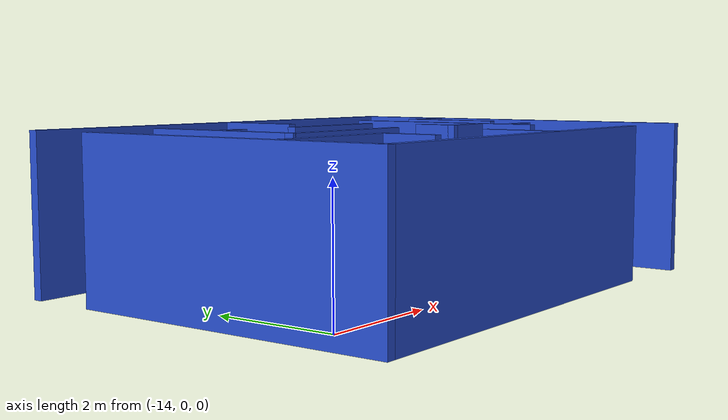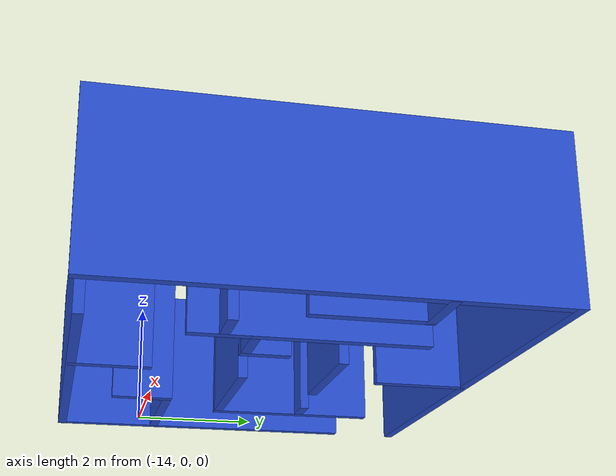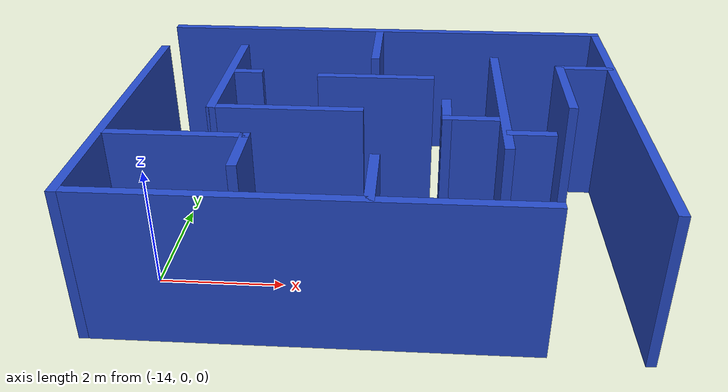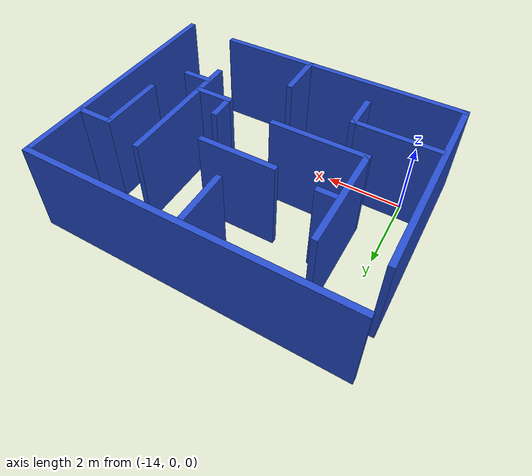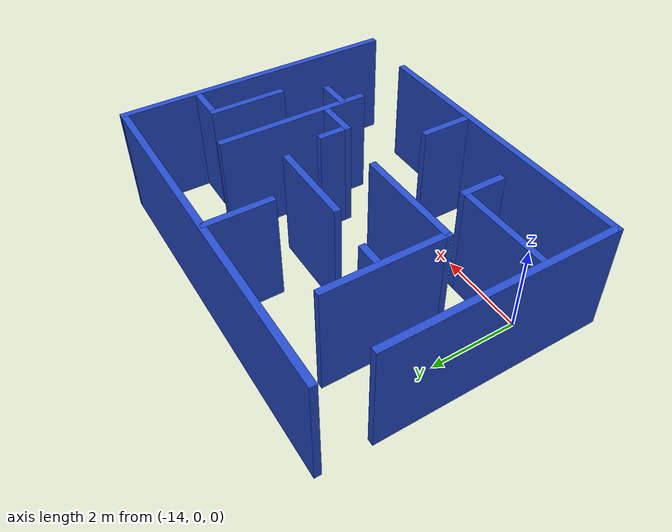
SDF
<?xml version='1.0'?>
<sdf version='1.7'>
  <model name='obstacle_course_3'>
    <pose>-7.3913 1.74348 0 0 -0 0</pose>
    <link name='Wall_12'>
      <collision name='Wall_12_Collision'>
        <geometry>
          <box>
            <size>8.25 0.15 2.5</size>
          </box>
        </geometry>
        <pose>0 0 1.25 0 -0 0</pose>
      </collision>
      <visual name='Wall_12_Visual'>
        <pose>0 0 1.25 0 -0 0</pose>
        <geometry>
          <box>
            <size>8.25 0.15 2.5</size>
          </box>
        </geometry>
        <material>
          <script>
            <uri>file://media/materials/scripts/gazebo.material</uri>
            <name>Gazebo/Blue</name>
          </script>
          <ambient>1 1 1 1</ambient>
        </material>
        <meta>
          <layer>0</layer>
        </meta>
      </visual>
      <pose>-3.26629 3.175 0 0 -0 0</pose>
    </link>
    <link name='Wall_13'>
      <collision name='Wall_13_Collision'>
        <geometry>
          <box>
            <size>6.5 0.15 2.5</size>
          </box>
        </geometry>
        <pose>0 0 1.25 0 -0 0</pose>
      </collision>
      <visual name='Wall_13_Visual'>
        <pose>0 0 1.25 0 -0 0</pose>
        <geometry>
          <box>
            <size>6.5 0.15 2.5</size>
          </box>
        </geometry>
        <material>
          <script>
            <uri>file://media/materials/scripts/gazebo.material</uri>
            <name>Gazebo/Blue</name>
          </script>
          <ambient>1 1 1 1</ambient>
        </material>
        <meta>
          <layer>0</layer>
        </meta>
      </visual>
      <pose>0.783705 -0 0 0 -0 -1.5708</pose>
    </link>
    <link name='Wall_19'>
      <collision name='Wall_19_Collision'>
        <geometry>
          <box>
            <size>2.5 0.15 2.5</size>
          </box>
        </geometry>
        <pose>0 0 1.25 0 -0 0</pose>
      </collision>
      <visual name='Wall_19_Visual'>
        <pose>0 0 1.25 0 -0 0</pose>
        <geometry>
          <box>
            <size>2.5 0.15 2.5</size>
          </box>
        </geometry>
        <material>
          <script>
            <uri>file://media/materials/scripts/gazebo.material</uri>
            <name>Gazebo/Blue</name>
          </script>
          <ambient>1 1 1 1</ambient>
        </material>
        <meta>
          <layer>0</layer>
        </meta>
      </visual>
      <pose>-4.67213 -0.429146 0 0 -0 0</pose>
    </link>
    <link name='Wall_25'>
      <collision name='Wall_25_Collision'>
        <geometry>
          <box>
            <size>3.5 0.15 2.5</size>
          </box>
        </geometry>
        <pose>0 0 1.25 0 -0 0</pose>
      </collision>
      <visual name='Wall_25_Visual'>
        <pose>0 0 1.25 0 -0 0</pose>
        <geometry>
          <box>
            <size>3.5 0.15 2.5</size>
          </box>
        </geometry>
        <material>
          <script>
            <uri>file://media/materials/scripts/gazebo.material</uri>
            <name>Gazebo/Blue</name>
          </script>
          <ambient>1 1 1 1</ambient>
        </material>
        <meta>
          <layer>0</layer>
        </meta>
      </visual>
      <pose>-1.22975 0.135775 0 0 -0 -1.5708</pose>
    </link>
    <link name='Wall_29'>
      <collision name='Wall_29_Collision'>
        <geometry>
          <box>
            <size>1 0.15 2.5</size>
          </box>
        </geometry>
        <pose>0 0 1.25 0 -0 0</pose>
      </collision>
      <visual name='Wall_29_Visual'>
        <pose>0 0 1.25 0 -0 0</pose>
        <geometry>
          <box>
            <size>1 0.15 2.5</size>
          </box>
        </geometry>
        <material>
          <script>
            <uri>file://media/materials/scripts/gazebo.material</uri>
            <name>Gazebo/Blue</name>
          </script>
          <ambient>1 1 1 1</ambient>
        </material>
        <meta>
          <layer>0</layer>
        </meta>
      </visual>
      <pose>-5.11255 -1.8324 0 0 -0 -1.5708</pose>
    </link>
    <link name='Wall_38'>
      <collision name='Wall_38_Collision'>
        <geometry>
          <box>
            <size>0.75 0.15 2.5</size>
          </box>
        </geometry>
        <pose>0 0 1.25 0 -0 0</pose>
      </collision>
      <visual name='Wall_38_Visual'>
        <pose>0 0 1.25 0 -0 0</pose>
        <geometry>
          <box>
            <size>0.75 0.15 2.5</size>
          </box>
        </geometry>
        <material>
          <script>
            <uri>file://media/materials/scripts/gazebo.material</uri>
            <name>Gazebo/Blue</name>
          </script>
          <ambient>1 1 1 1</ambient>
        </material>
        <meta>
          <layer>0</layer>
        </meta>
      </visual>
      <pose>-0.865131 -1.09258 0 0 -0 3.14159</pose>
    </link>
    <link name='Wall_4'>
      <collision name='Wall_4_Collision'>
        <geometry>
          <box>
            <size>5.25 0.15 2.5</size>
          </box>
        </geometry>
        <pose>0 0 1.25 0 -0 0</pose>
      </collision>
      <visual name='Wall_4_Visual'>
        <pose>0 0 1.25 0 -0 0</pose>
        <geometry>
          <box>
            <size>5.25 0.15 2.5</size>
          </box>
        </geometry>
        <material>
          <script>
            <uri>file://media/materials/scripts/gazebo.material</uri>
            <name>Gazebo/Blue</name>
          </script>
          <ambient>1 1 1 1</ambient>
        </material>
        <meta>
          <layer>0</layer>
        </meta>
      </visual>
      <pose>-7.3163 -0.529344 0 0 -0 -1.5708</pose>
    </link>
    <link name='Wall_40'>
      <collision name='Wall_40_Collision'>
        <geometry>
          <box>
            <size>2.25 0.15 2.5</size>
          </box>
        </geometry>
        <pose>0 0 1.25 0 -0 0</pose>
      </collision>
      <visual name='Wall_40_Visual'>
        <pose>0 0 1.25 0 -0 0</pose>
        <geometry>
          <box>
            <size>2.25 0.15 2.5</size>
          </box>
        </geometry>
        <material>
          <script>
            <uri>file://media/materials/scripts/gazebo.material</uri>
            <name>Gazebo/Blue</name>
          </script>
          <ambient>1 1 1 1</ambient>
        </material>
        <meta>
          <layer>0</layer>
        </meta>
      </visual>
      <pose>-6.16255 -1.4074 0 0 -0 3.14159</pose>
    </link>
    <link name='Wall_42'>
      <collision name='Wall_42_Collision'>
        <geometry>
          <box>
            <size>1.75 0.15 2.5</size>
          </box>
        </geometry>
        <pose>0 0 1.25 0 -0 0</pose>
      </collision>
      <visual name='Wall_42_Visual'>
        <pose>0 0 1.25 0 -0 0</pose>
        <geometry>
          <box>
            <size>1.75 0.15 2.5</size>
          </box>
        </geometry>
        <material>
          <script>
            <uri>file://media/materials/scripts/gazebo.material</uri>
            <name>Gazebo/Blue</name>
          </script>
          <ambient>1 1 1 1</ambient>
        </material>
        <meta>
          <layer>0</layer>
        </meta>
      </visual>
      <pose>-0.11039 0.686868 0 0 -0 1.5708</pose>
    </link>
    <link name='Wall_44'>
      <collision name='Wall_44_Collision'>
        <geometry>
          <box>
            <size>1 0.15 2.5</size>
          </box>
        </geometry>
        <pose>0 0 1.25 0 -0 0</pose>
      </collision>
      <visual name='Wall_44_Visual'>
        <pose>0 0 1.25 0 -0 0</pose>
        <geometry>
          <box>
            <size>1 0.15 2.5</size>
          </box>
        </geometry>
        <material>
          <script>
            <uri>file://media/materials/scripts/gazebo.material</uri>
            <name>Gazebo/Blue</name>
          </script>
          <ambient>1 1 1 1</ambient>
        </material>
        <meta>
          <layer>0</layer>
        </meta>
      </visual>
      <pose>0.31461 1.48687 0 0 -0 0</pose>
    </link>
    <link name='Wall_46'>
      <collision name='Wall_46_Collision'>
        <geometry>
          <box>
            <size>0.5 0.15 2.5</size>
          </box>
        </geometry>
        <pose>0 0 1.25 0 -0 0</pose>
      </collision>
      <visual name='Wall_46_Visual'>
        <pose>0 0 1.25 0 -0 0</pose>
        <geometry>
          <box>
            <size>0.5 0.15 2.5</size>
          </box>
        </geometry>
        <material>
          <script>
            <uri>file://media/materials/scripts/gazebo.material</uri>
            <name>Gazebo/Blue</name>
          </script>
          <ambient>1 1 1 1</ambient>
        </material>
        <meta>
          <layer>0</layer>
        </meta>
      </visual>
      <pose>-5.53241 1.00623 0 0 -0 3.14159</pose>
    </link>
    <link name='Wall_5'>
      <collision name='Wall_5_Collision'>
        <geometry>
          <box>
            <size>6.75 0.15 2.5</size>
          </box>
        </geometry>
        <pose>0 0 1.25 0 -0 0</pose>
      </collision>
      <visual name='Wall_5_Visual'>
        <pose>0 0 1.25 0 -0 0</pose>
        <geometry>
          <box>
            <size>6.75 0.15 2.5</size>
          </box>
        </geometry>
        <material>
          <script>
            <uri>file://media/materials/scripts/gazebo.material</uri>
            <name>Gazebo/Blue</name>
          </script>
          <ambient>1 1 1 1</ambient>
        </material>
        <meta>
          <layer>0</layer>
        </meta>
      </visual>
      <pose>-4.0163 -3.07934 0 0 -0 0</pose>
    </link>
    <link name='Wall_50'>
      <collision name='Wall_50_Collision'>
        <geometry>
          <box>
            <size>1 0.15 2.5</size>
          </box>
        </geometry>
        <pose>0 0 1.25 0 -0 0</pose>
      </collision>
      <visual name='Wall_50_Visual'>
        <pose>0 0 1.25 0 -0 0</pose>
        <geometry>
          <box>
            <size>1 0.15 2.5</size>
          </box>
        </geometry>
        <material>
          <script>
            <uri>file://media/materials/scripts/gazebo.material</uri>
            <name>Gazebo/Blue</name>
          </script>
          <ambient>1 1 1 1</ambient>
        </material>
        <meta>
          <layer>0</layer>
        </meta>
      </visual>
      <pose>-1.68973 -0.637834 0 0 -0 3.14159</pose>
    </link>
    <link name='Wall_51'>
      <collision name='Wall_51_Collision'>
        <geometry>
          <box>
            <size>0.75 0.15 2.5</size>
          </box>
        </geometry>
        <pose>0 0 1.25 0 -0 0</pose>
      </collision>
      <visual name='Wall_51_Visual'>
        <pose>0 0 1.25 0 -0 0</pose>
        <geometry>
          <box>
            <size>0.75 0.15 2.5</size>
          </box>
        </geometry>
        <material>
          <script>
            <uri>file://media/materials/scripts/gazebo.material</uri>
            <name>Gazebo/Blue</name>
          </script>
          <ambient>1 1 1 1</ambient>
        </material>
        <meta>
          <layer>0</layer>
        </meta>
      </visual>
      <pose>-2.11473 -0.337834 0 0 -0 1.5708</pose>
    </link>
    <link name='Wall_53'>
      <collision name='Wall_53_Collision'>
        <geometry>
          <box>
            <size>2 0.15 2.5</size>
          </box>
        </geometry>
        <pose>0 0 1.25 0 -0 0</pose>
      </collision>
      <visual name='Wall_53_Visual'>
        <pose>0 0 1.25 0 -0 0</pose>
        <geometry>
          <box>
            <size>2 0.15 2.5</size>
          </box>
        </geometry>
        <material>
          <script>
            <uri>file://media/materials/scripts/gazebo.material</uri>
            <name>Gazebo/Blue</name>
          </script>
          <ambient>1 1 1 1</ambient>
        </material>
        <meta>
          <layer>0</layer>
        </meta>
      </visual>
      <pose>-3.3091 0.901292 0 0 -0 3.14159</pose>
    </link>
    <link name='Wall_63'>
      <collision name='Wall_63_Collision'>
        <geometry>
          <box>
            <size>1.5 0.15 2.5</size>
          </box>
        </geometry>
        <pose>0 0 1.25 0 -0 0</pose>
      </collision>
      <visual name='Wall_63_Visual'>
        <pose>0 0 1.25 0 -0 0</pose>
        <geometry>
          <box>
            <size>1.5 0.15 2.5</size>
          </box>
        </geometry>
        <material>
          <script>
            <uri>file://media/materials/scripts/gazebo.material</uri>
            <name>Gazebo/Blue</name>
          </script>
          <ambient>1 1 1 1</ambient>
        </material>
        <meta>
          <layer>0</layer>
        </meta>
      </visual>
      <pose>-3.36354 2.45079 0 0 -0 1.5708</pose>
    </link>
    <link name='Wall_66'>
      <collision name='Wall_66_Collision'>
        <geometry>
          <box>
            <size>2.75 0.15 2.5</size>
          </box>
        </geometry>
        <pose>0 0 1.25 0 -0 0</pose>
      </collision>
      <visual name='Wall_66_Visual'>
        <pose>0 0 1.25 0 -0 0</pose>
        <geometry>
          <box>
            <size>2.75 0.15 2.5</size>
          </box>
        </geometry>
        <material>
          <script>
            <uri>file://media/materials/scripts/gazebo.material</uri>
            <name>Gazebo/Blue</name>
          </script>
          <ambient>1 1 1 1</ambient>
        </material>
        <meta>
          <layer>0</layer>
        </meta>
      </visual>
      <pose>-5.84713 0.870854 0 0 -0 1.5708</pose>
    </link>
    <link name='Wall_69'>
      <collision name='Wall_69_Collision'>
        <geometry>
          <box>
            <size>1.25 0.15 2.5</size>
          </box>
        </geometry>
        <pose>0 0 1.25 0 -0 0</pose>
      </collision>
      <visual name='Wall_69_Visual'>
        <pose>0 0 1.25 0 -0 0</pose>
        <geometry>
          <box>
            <size>1.25 0.15 2.5</size>
          </box>
        </geometry>
        <material>
          <script>
            <uri>file://media/materials/scripts/gazebo.material</uri>
            <name>Gazebo/Blue</name>
          </script>
          <ambient>1 1 1 1</ambient>
        </material>
        <meta>
          <layer>0</layer>
        </meta>
      </visual>
      <pose>-3.15366 -2.50146 0 0 -0 1.5708</pose>
    </link>
    <static>1</static>
  </model>
</sdf>
